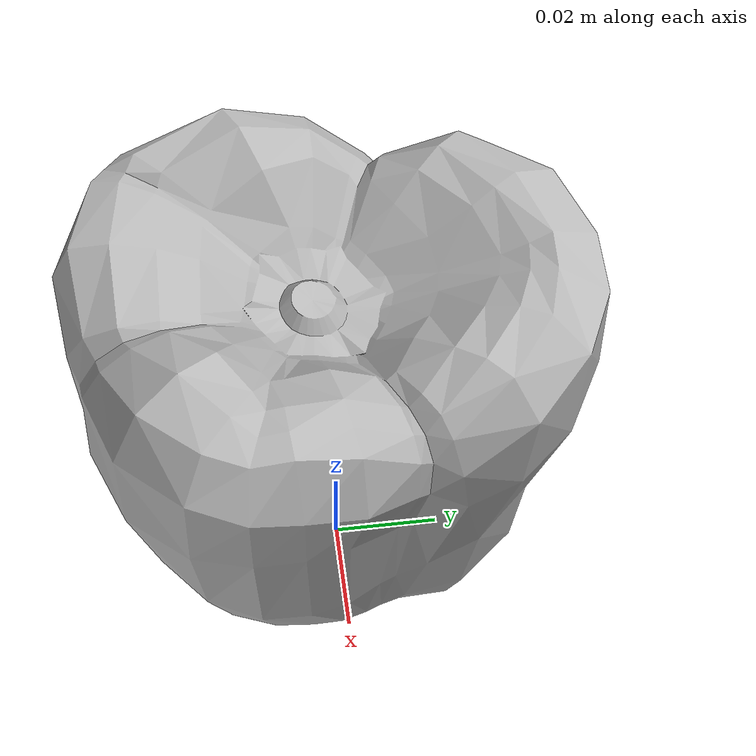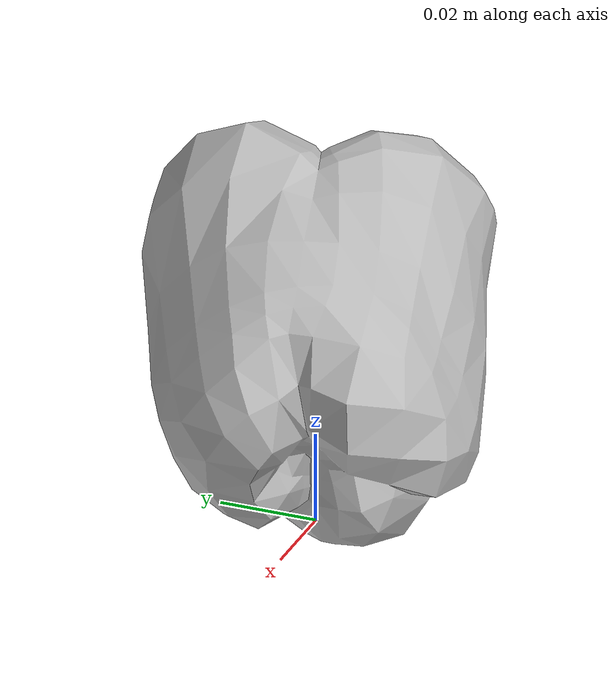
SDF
<?xml version="1.0" ?>
<!-- |    This document was autogenerated by xacro from red_bell_pepper_no_stem_scale_95.sdf.xacro | -->
<!-- |    EDITING THIS FILE BY HAND IS NOT RECOMMENDED                                 | -->
<sdf version="1.7" xmlns:drake="drake.mit.edu">
  <model name="red_bell_pepper_no_stem">
    <link name="red_bell_pepper_no_stem">
      <pose>0 0 0 0 0 0</pose>
      <inertial>
        <pose>-0.00203 -0.00132 0.0483 0 0 0</pose>
        <mass>0.181</mass>
        <inertia>
          <ixx> 0.000163</ixx>
          <ixy> 0.000003</ixy>
          <ixz>-0.000005</ixz>
          <iyy> 0.000148</iyy>
          <iyz> 0.000004</iyz>
          <izz> 0.000129</izz>
        </inertia>
      </inertial>
      <visual name="red_bell_pepper_no_stem">
        <!-- The orientation of the pepper in the glTF is not upright,
        so we must rotate by 90 degress here to make it so. -->
        <pose>0 0 0 -1.5708 0 0</pose>
        <geometry>
          <mesh>
            <uri>/data/kylehatch/lbm_eval/lbm_eval_models/groceries/bell_peppers/assets/red_bell_pepper_no_stem_high.gltf</uri>
            <scale>0.95 0.95 0.95</scale>
          </mesh>
        </geometry>
      </visual>
      <collision name="red_bell_pepper_no_stem_collision">
        <pose>0 0 0 0 0 0</pose>
        <geometry>
          <mesh>
            <uri>/data/kylehatch/lbm_eval/lbm_eval_models/groceries/bell_peppers/assets/red_bell_pepper_no_stem_low.obj</uri>
            <scale>0.95 0.95 0.95</scale>
          </mesh>
        </geometry>
        <drake:proximity_properties>
          <drake:mu_dynamic>0.5</drake:mu_dynamic>
          <drake:mu_static>0.5</drake:mu_static>
          <drake:compliant_hydroelastic/>
          <drake:hydroelastic_modulus>1e7</drake:hydroelastic_modulus>
          <drake:hunt_crossley_dissipation>40</drake:hunt_crossley_dissipation>
        </drake:proximity_properties>
      </collision>
    </link>
    <frame name="origin">
      <pose relative_to="red_bell_pepper_no_stem">0 0 0 0 0 0</pose>
    </frame>
    <frame name="flush_bottom_center__z_up">
      <pose relative_to="red_bell_pepper_no_stem">0 0 0 0 0 0</pose>
    </frame>
    <frame name="center__z_up">
      <pose relative_to="origin">-0.00013774999999999934 9.16749999999994e-05 0.043957924999999995 0 0 0</pose>
    </frame>
  </model>
</sdf>
